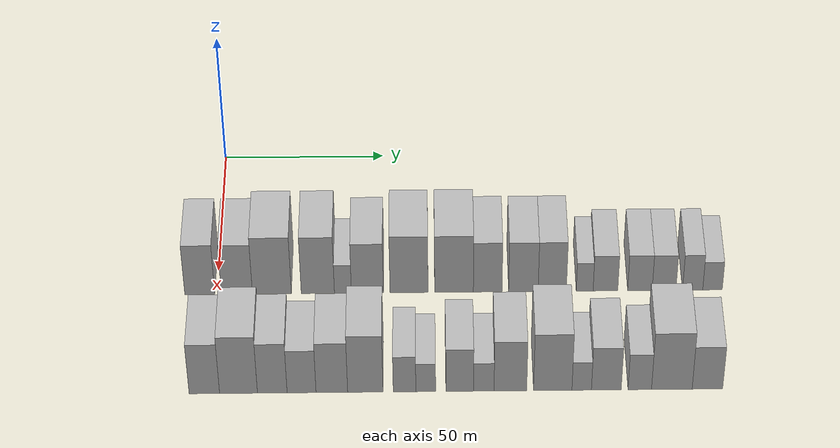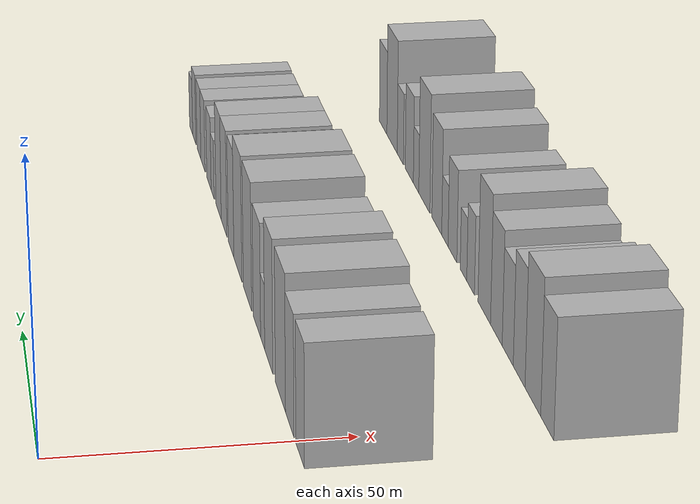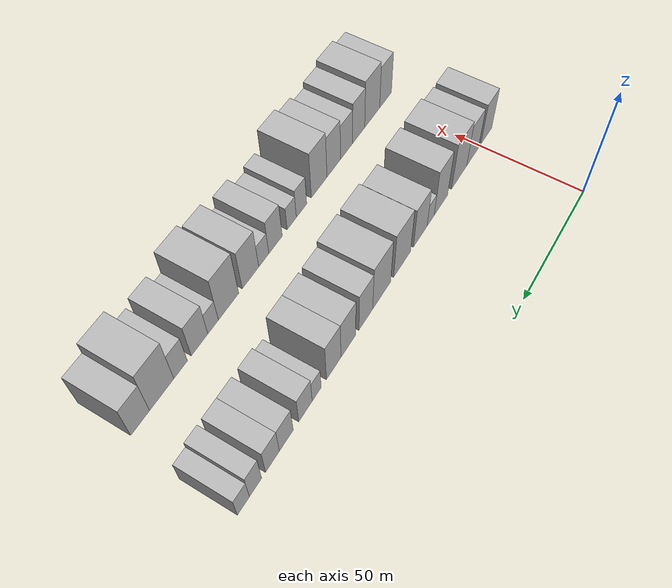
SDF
<sdf version="1.6">
 <world name="default">
  <model name="building_34">
   <static>1</static>
   <pose>50.0000 -5.1855 0 0.000000 0.000000 0.000000</pose>
   <link name="link">
    <pose>0 0 10.50 0 0 0</pose>
    <collision name="collision"><geometry><box><size>20.0000 9.0860 21.0000</size></box></geometry></collision>
    <visual name="visual">
     <cast_shadows>0</cast_shadows>
     <geometry><box><size>20.0000 9.0860 21.0000</size></box></geometry>
     <material>
      <script>
       <uri>model://HANNAS_wall/materials/scripts</uri>
       <uri>model://HANNAS_wall/materials/textures</uri>
       <name>vrc/HANNAS_wall</name>
      </script>
     </material>
    </visual>
   </link>
  </model>
  <model name="building_35">
   <static>1</static>
   <pose>50.0000 6.0593 0 0.000000 0.000000 0.000000</pose>
   <link name="link">
    <pose>0 0 10.50 0 0 0</pose>
    <collision name="collision"><geometry><box><size>20.0000 9.4036 21.0000</size></box></geometry></collision>
    <visual name="visual">
     <cast_shadows>0</cast_shadows>
     <geometry><box><size>20.0000 9.4036 21.0000</size></box></geometry>
     <material>
      <script>
       <uri>model://HANNAS_wall/materials/scripts</uri>
       <uri>model://HANNAS_wall/materials/textures</uri>
       <name>vrc/HANNAS_wall</name>
      </script>
     </material>
    </visual>
   </link>
  </model>
  <model name="building_36">
   <static>1</static>
   <pose>50.0000 16.6558 0 0.000000 0.000000 0.000000</pose>
   <link name="link">
    <pose>0 0 12.00 0 0 0</pose>
    <collision name="collision"><geometry><box><size>20.0000 11.7895 24.0000</size></box></geometry></collision>
    <visual name="visual">
     <cast_shadows>0</cast_shadows>
     <geometry><box><size>20.0000 11.7895 24.0000</size></box></geometry>
     <material>
      <script>
       <uri>model://HANNAS_wall/materials/scripts</uri>
       <uri>model://HANNAS_wall/materials/textures</uri>
       <name>vrc/HANNAS_wall</name>
      </script>
     </material>
    </visual>
   </link>
  </model>
  <model name="building_37">
   <static>1</static>
   <pose>50.0000 30.5757 0 0.000000 0.000000 0.000000</pose>
   <link name="link">
    <pose>0 0 12.00 0 0 0</pose>
    <collision name="collision"><geometry><box><size>20.0000 10.0503 24.0000</size></box></geometry></collision>
    <visual name="visual">
     <cast_shadows>0</cast_shadows>
     <geometry><box><size>20.0000 10.0503 24.0000</size></box></geometry>
     <material>
      <script>
       <uri>model://HANNAS_wall/materials/scripts</uri>
       <uri>model://HANNAS_wall/materials/textures</uri>
       <name>vrc/HANNAS_wall</name>
      </script>
     </material>
    </visual>
   </link>
  </model>
  <model name="building_38">
   <static>1</static>
   <pose>50.0000 38.1745 0 0.000000 0.000000 0.000000</pose>
   <link name="link">
    <pose>0 0 6.00 0 0 0</pose>
    <collision name="collision"><geometry><box><size>20.0000 5.1472 12.0000</size></box></geometry></collision>
    <visual name="visual">
     <cast_shadows>0</cast_shadows>
     <geometry><box><size>20.0000 5.1472 12.0000</size></box></geometry>
     <material>
      <script>
       <uri>model://HANNAS_wall/materials/scripts</uri>
       <uri>model://HANNAS_wall/materials/textures</uri>
       <name>vrc/HANNAS_wall</name>
      </script>
     </material>
    </visual>
   </link>
  </model>
  <model name="building_39">
   <static>1</static>
   <pose>50.0000 45.6033 0 0.000000 0.000000 0.000000</pose>
   <link name="link">
    <pose>0 0 10.50 0 0 0</pose>
    <collision name="collision"><geometry><box><size>20.0000 9.7105 21.0000</size></box></geometry></collision>
    <visual name="visual">
     <cast_shadows>0</cast_shadows>
     <geometry><box><size>20.0000 9.7105 21.0000</size></box></geometry>
     <material>
      <script>
       <uri>model://HANNAS_wall/materials/scripts</uri>
       <uri>model://HANNAS_wall/materials/textures</uri>
       <name>vrc/HANNAS_wall</name>
      </script>
     </material>
    </visual>
   </link>
  </model>
  <model name="building_40">
   <static>1</static>
   <pose>50.0000 58.2262 0 0.000000 0.000000 0.000000</pose>
   <link name="link">
    <pose>0 0 12.00 0 0 0</pose>
    <collision name="collision"><geometry><box><size>20.0000 11.5352 24.0000</size></box></geometry></collision>
    <visual name="visual">
     <cast_shadows>0</cast_shadows>
     <geometry><box><size>20.0000 11.5352 24.0000</size></box></geometry>
     <material>
      <script>
       <uri>model://HANNAS_wall/materials/scripts</uri>
       <uri>model://HANNAS_wall/materials/textures</uri>
       <name>vrc/HANNAS_wall</name>
      </script>
     </material>
    </visual>
   </link>
  </model>
  <model name="building_41">
   <static>1</static>
   <pose>50.0000 71.8570 0 0.000000 0.000000 0.000000</pose>
   <link name="link">
    <pose>0 0 12.00 0 0 0</pose>
    <collision name="collision"><geometry><box><size>20.0000 11.7263 24.0000</size></box></geometry></collision>
    <visual name="visual">
     <cast_shadows>0</cast_shadows>
     <geometry><box><size>20.0000 11.7263 24.0000</size></box></geometry>
     <material>
      <script>
       <uri>model://HANNAS_wall/materials/scripts</uri>
       <uri>model://HANNAS_wall/materials/textures</uri>
       <name>vrc/HANNAS_wall</name>
      </script>
     </material>
    </visual>
   </link>
  </model>
  <model name="building_42">
   <static>1</static>
   <pose>50.0000 82.0700 0 0.000000 0.000000 0.000000</pose>
   <link name="link">
    <pose>0 0 10.50 0 0 0</pose>
    <collision name="collision"><geometry><box><size>20.0000 8.6996 21.0000</size></box></geometry></collision>
    <visual name="visual">
     <cast_shadows>0</cast_shadows>
     <geometry><box><size>20.0000 8.6996 21.0000</size></box></geometry>
     <material>
      <script>
       <uri>model://HANNAS_wall/materials/scripts</uri>
       <uri>model://HANNAS_wall/materials/textures</uri>
       <name>vrc/HANNAS_wall</name>
      </script>
     </material>
    </visual>
   </link>
  </model>
  <model name="building_43">
   <static>1</static>
   <pose>50.0000 92.8942 0 0.000000 0.000000 0.000000</pose>
   <link name="link">
    <pose>0 0 10.50 0 0 0</pose>
    <collision name="collision"><geometry><box><size>20.0000 8.9489 21.0000</size></box></geometry></collision>
    <visual name="visual">
     <cast_shadows>0</cast_shadows>
     <geometry><box><size>20.0000 8.9489 21.0000</size></box></geometry>
     <material>
      <script>
       <uri>model://HANNAS_wall/materials/scripts</uri>
       <uri>model://HANNAS_wall/materials/textures</uri>
       <name>vrc/HANNAS_wall</name>
      </script>
     </material>
    </visual>
   </link>
  </model>
  <model name="building_44">
   <static>1</static>
   <pose>50.0000 101.6525 0 0.000000 0.000000 0.000000</pose>
   <link name="link">
    <pose>0 0 10.50 0 0 0</pose>
    <collision name="collision"><geometry><box><size>20.0000 8.5676 21.0000</size></box></geometry></collision>
    <visual name="visual">
     <cast_shadows>0</cast_shadows>
     <geometry><box><size>20.0000 8.5676 21.0000</size></box></geometry>
     <material>
      <script>
       <uri>model://HANNAS_wall/materials/scripts</uri>
       <uri>model://HANNAS_wall/materials/textures</uri>
       <name>vrc/HANNAS_wall</name>
      </script>
     </material>
    </visual>
   </link>
  </model>
  <model name="building_45">
   <static>1</static>
   <pose>50.0000 111.4950 0 0.000000 0.000000 0.000000</pose>
   <link name="link">
    <pose>0 0 6.00 0 0 0</pose>
    <collision name="collision"><geometry><box><size>20.0000 5.1174 12.0000</size></box></geometry></collision>
    <visual name="visual">
     <cast_shadows>0</cast_shadows>
     <geometry><box><size>20.0000 5.1174 12.0000</size></box></geometry>
     <material>
      <script>
       <uri>model://HANNAS_wall/materials/scripts</uri>
       <uri>model://HANNAS_wall/materials/textures</uri>
       <name>vrc/HANNAS_wall</name>
      </script>
     </material>
    </visual>
   </link>
  </model>
  <model name="building_46">
   <static>1</static>
   <pose>50.0000 117.8021 0 0.000000 0.000000 0.000000</pose>
   <link name="link">
    <pose>0 0 7.50 0 0 0</pose>
    <collision name="collision"><geometry><box><size>20.0000 7.4967 15.0000</size></box></geometry></collision>
    <visual name="visual">
     <cast_shadows>0</cast_shadows>
     <geometry><box><size>20.0000 7.4967 15.0000</size></box></geometry>
     <material>
      <script>
       <uri>model://HANNAS_wall/materials/scripts</uri>
       <uri>model://HANNAS_wall/materials/textures</uri>
       <name>vrc/HANNAS_wall</name>
      </script>
     </material>
    </visual>
   </link>
  </model>
  <model name="building_47">
   <static>1</static>
   <pose>50.0000 128.2664 0 0.000000 0.000000 0.000000</pose>
   <link name="link">
    <pose>0 0 7.50 0 0 0</pose>
    <collision name="collision"><geometry><box><size>20.0000 7.4319 15.0000</size></box></geometry></collision>
    <visual name="visual">
     <cast_shadows>0</cast_shadows>
     <geometry><box><size>20.0000 7.4319 15.0000</size></box></geometry>
     <material>
      <script>
       <uri>model://HANNAS_wall/materials/scripts</uri>
       <uri>model://HANNAS_wall/materials/textures</uri>
       <name>vrc/HANNAS_wall</name>
      </script>
     </material>
    </visual>
   </link>
  </model>
  <model name="building_48">
   <static>1</static>
   <pose>50.0000 135.5950 0 0.000000 0.000000 0.000000</pose>
   <link name="link">
    <pose>0 0 7.50 0 0 0</pose>
    <collision name="collision"><geometry><box><size>20.0000 7.2254 15.0000</size></box></geometry></collision>
    <visual name="visual">
     <cast_shadows>0</cast_shadows>
     <geometry><box><size>20.0000 7.2254 15.0000</size></box></geometry>
     <material>
      <script>
       <uri>model://HANNAS_wall/materials/scripts</uri>
       <uri>model://HANNAS_wall/materials/textures</uri>
       <name>vrc/HANNAS_wall</name>
      </script>
     </material>
    </visual>
   </link>
  </model>
  <model name="building_49">
   <static>1</static>
   <pose>50.0000 144.2741 0 0.000000 0.000000 0.000000</pose>
   <link name="link">
    <pose>0 0 7.50 0 0 0</pose>
    <collision name="collision"><geometry><box><size>20.0000 6.1329 15.0000</size></box></geometry></collision>
    <visual name="visual">
     <cast_shadows>0</cast_shadows>
     <geometry><box><size>20.0000 6.1329 15.0000</size></box></geometry>
     <material>
      <script>
       <uri>model://HANNAS_wall/materials/scripts</uri>
       <uri>model://HANNAS_wall/materials/textures</uri>
       <name>vrc/HANNAS_wall</name>
      </script>
     </material>
    </visual>
   </link>
  </model>
  <model name="building_50">
   <static>1</static>
   <pose>50.0000 150.3079 0 0.000000 0.000000 0.000000</pose>
   <link name="link">
    <pose>0 0 6.00 0 0 0</pose>
    <collision name="collision"><geometry><box><size>20.0000 5.9346 12.0000</size></box></geometry></collision>
    <visual name="visual">
     <cast_shadows>0</cast_shadows>
     <geometry><box><size>20.0000 5.9346 12.0000</size></box></geometry>
     <material>
      <script>
       <uri>model://HANNAS_wall/materials/scripts</uri>
       <uri>model://HANNAS_wall/materials/textures</uri>
       <name>vrc/HANNAS_wall</name>
      </script>
     </material>
    </visual>
   </link>
  </model>
  <model name="building_105">
   <static>1</static>
   <pose>90.0000 -1.7390 0 0.000000 0.000000 0.000000</pose>
   <link name="link">
    <pose>0 0 10.50 0 0 0</pose>
    <collision name="collision"><geometry><box><size>20.0000 8.9101 21.0000</size></box></geometry></collision>
    <visual name="visual">
     <cast_shadows>0</cast_shadows>
     <geometry><box><size>20.0000 8.9101 21.0000</size></box></geometry>
     <material>
      <script>
       <uri>model://HANNAS_wall/materials/scripts</uri>
       <uri>model://HANNAS_wall/materials/textures</uri>
       <name>vrc/HANNAS_wall</name>
      </script>
     </material>
    </visual>
   </link>
  </model>
  <model name="building_106">
   <static>1</static>
   <pose>90.0000 8.2553 0 0.000000 0.000000 0.000000</pose>
   <link name="link">
    <pose>0 0 12.00 0 0 0</pose>
    <collision name="collision"><geometry><box><size>20.0000 11.0785 24.0000</size></box></geometry></collision>
    <visual name="visual">
     <cast_shadows>0</cast_shadows>
     <geometry><box><size>20.0000 11.0785 24.0000</size></box></geometry>
     <material>
      <script>
       <uri>model://HANNAS_wall/materials/scripts</uri>
       <uri>model://HANNAS_wall/materials/textures</uri>
       <name>vrc/HANNAS_wall</name>
      </script>
     </material>
    </visual>
   </link>
  </model>
  <model name="building_107">
   <static>1</static>
   <pose>90.0000 18.1344 0 0.000000 0.000000 0.000000</pose>
   <link name="link">
    <pose>0 0 10.50 0 0 0</pose>
    <collision name="collision"><geometry><box><size>20.0000 8.6796 21.0000</size></box></geometry></collision>
    <visual name="visual">
     <cast_shadows>0</cast_shadows>
     <geometry><box><size>20.0000 8.6796 21.0000</size></box></geometry>
     <material>
      <script>
       <uri>model://HANNAS_wall/materials/scripts</uri>
       <uri>model://HANNAS_wall/materials/textures</uri>
       <name>vrc/HANNAS_wall</name>
      </script>
     </material>
    </visual>
   </link>
  </model>
  <model name="building_108">
   <static>1</static>
   <pose>90.0000 26.7055 0 0.000000 0.000000 0.000000</pose>
   <link name="link">
    <pose>0 0 9.00 0 0 0</pose>
    <collision name="collision"><geometry><box><size>20.0000 8.4627 18.0000</size></box></geometry></collision>
    <visual name="visual">
     <cast_shadows>0</cast_shadows>
     <geometry><box><size>20.0000 8.4627 18.0000</size></box></geometry>
     <material>
      <script>
       <uri>model://HANNAS_wall/materials/scripts</uri>
       <uri>model://HANNAS_wall/materials/textures</uri>
       <name>vrc/HANNAS_wall</name>
      </script>
     </material>
    </visual>
   </link>
  </model>
  <model name="building_109">
   <static>1</static>
   <pose>90.0000 35.5685 0 0.000000 0.000000 0.000000</pose>
   <link name="link">
    <pose>0 0 10.50 0 0 0</pose>
    <collision name="collision"><geometry><box><size>20.0000 9.2633 21.0000</size></box></geometry></collision>
    <visual name="visual">
     <cast_shadows>0</cast_shadows>
     <geometry><box><size>20.0000 9.2633 21.0000</size></box></geometry>
     <material>
      <script>
       <uri>model://HANNAS_wall/materials/scripts</uri>
       <uri>model://HANNAS_wall/materials/textures</uri>
       <name>vrc/HANNAS_wall</name>
      </script>
     </material>
    </visual>
   </link>
  </model>
  <model name="building_110">
   <static>1</static>
   <pose>90.0000 45.3783 0 0.000000 0.000000 0.000000</pose>
   <link name="link">
    <pose>0 0 12.00 0 0 0</pose>
    <collision name="collision"><geometry><box><size>20.0000 10.3563 24.0000</size></box></geometry></collision>
    <visual name="visual">
     <cast_shadows>0</cast_shadows>
     <geometry><box><size>20.0000 10.3563 24.0000</size></box></geometry>
     <material>
      <script>
       <uri>model://HANNAS_wall/materials/scripts</uri>
       <uri>model://HANNAS_wall/materials/textures</uri>
       <name>vrc/HANNAS_wall</name>
      </script>
     </material>
    </visual>
   </link>
  </model>
  <model name="building_111">
   <static>1</static>
   <pose>90.0000 56.8653 0 0.000000 0.000000 0.000000</pose>
   <link name="link">
    <pose>0 0 7.50 0 0 0</pose>
    <collision name="collision"><geometry><box><size>20.0000 6.6177 15.0000</size></box></geometry></collision>
    <visual name="visual">
     <cast_shadows>0</cast_shadows>
     <geometry><box><size>20.0000 6.6177 15.0000</size></box></geometry>
     <material>
      <script>
       <uri>model://HANNAS_wall/materials/scripts</uri>
       <uri>model://HANNAS_wall/materials/textures</uri>
       <name>vrc/HANNAS_wall</name>
      </script>
     </material>
    </visual>
   </link>
  </model>
  <model name="building_112">
   <static>1</static>
   <pose>90.0000 63.0735 0 0.000000 0.000000 0.000000</pose>
   <link name="link">
    <pose>0 0 6.00 0 0 0</pose>
    <collision name="collision"><geometry><box><size>20.0000 5.7986 12.0000</size></box></geometry></collision>
    <visual name="visual">
     <cast_shadows>0</cast_shadows>
     <geometry><box><size>20.0000 5.7986 12.0000</size></box></geometry>
     <material>
      <script>
       <uri>model://HANNAS_wall/materials/scripts</uri>
       <uri>model://HANNAS_wall/materials/textures</uri>
       <name>vrc/HANNAS_wall</name>
      </script>
     </material>
    </visual>
   </link>
  </model>
  <model name="building_113">
   <static>1</static>
   <pose>90.0000 73.0336 0 0.000000 0.000000 0.000000</pose>
   <link name="link">
    <pose>0 0 9.00 0 0 0</pose>
    <collision name="collision"><geometry><box><size>20.0000 8.1217 18.0000</size></box></geometry></collision>
    <visual name="visual">
     <cast_shadows>0</cast_shadows>
     <geometry><box><size>20.0000 8.1217 18.0000</size></box></geometry>
     <material>
      <script>
       <uri>model://HANNAS_wall/materials/scripts</uri>
       <uri>model://HANNAS_wall/materials/textures</uri>
       <name>vrc/HANNAS_wall</name>
      </script>
     </material>
    </visual>
   </link>
  </model>
  <model name="building_114">
   <static>1</static>
   <pose>90.0000 80.0879 0 0.000000 0.000000 0.000000</pose>
   <link name="link">
    <pose>0 0 6.00 0 0 0</pose>
    <collision name="collision"><geometry><box><size>20.0000 5.9867 12.0000</size></box></geometry></collision>
    <visual name="visual">
     <cast_shadows>0</cast_shadows>
     <geometry><box><size>20.0000 5.9867 12.0000</size></box></geometry>
     <material>
      <script>
       <uri>model://HANNAS_wall/materials/scripts</uri>
       <uri>model://HANNAS_wall/materials/textures</uri>
       <name>vrc/HANNAS_wall</name>
      </script>
     </material>
    </visual>
   </link>
  </model>
  <model name="building_115">
   <static>1</static>
   <pose>90.0000 87.8691 0 0.000000 0.000000 0.000000</pose>
   <link name="link">
    <pose>0 0 10.50 0 0 0</pose>
    <collision name="collision"><geometry><box><size>20.0000 9.5756 21.0000</size></box></geometry></collision>
    <visual name="visual">
     <cast_shadows>0</cast_shadows>
     <geometry><box><size>20.0000 9.5756 21.0000</size></box></geometry>
     <material>
      <script>
       <uri>model://HANNAS_wall/materials/scripts</uri>
       <uri>model://HANNAS_wall/materials/textures</uri>
       <name>vrc/HANNAS_wall</name>
      </script>
     </material>
    </visual>
   </link>
  </model>
  <model name="building_116">
   <static>1</static>
   <pose>90.0000 100.2866 0 0.000000 0.000000 0.000000</pose>
   <link name="link">
    <pose>0 0 12.00 0 0 0</pose>
    <collision name="collision"><geometry><box><size>20.0000 11.2594 24.0000</size></box></geometry></collision>
    <visual name="visual">
     <cast_shadows>0</cast_shadows>
     <geometry><box><size>20.0000 11.2594 24.0000</size></box></geometry>
     <material>
      <script>
       <uri>model://HANNAS_wall/materials/scripts</uri>
       <uri>model://HANNAS_wall/materials/textures</uri>
       <name>vrc/HANNAS_wall</name>
      </script>
     </material>
    </visual>
   </link>
  </model>
  <model name="building_117">
   <static>1</static>
   <pose>90.0000 108.7750 0 0.000000 0.000000 0.000000</pose>
   <link name="link">
    <pose>0 0 6.00 0 0 0</pose>
    <collision name="collision"><geometry><box><size>20.0000 5.7174 12.0000</size></box></geometry></collision>
    <visual name="visual">
     <cast_shadows>0</cast_shadows>
     <geometry><box><size>20.0000 5.7174 12.0000</size></box></geometry>
     <material>
      <script>
       <uri>model://HANNAS_wall/materials/scripts</uri>
       <uri>model://HANNAS_wall/materials/textures</uri>
       <name>vrc/HANNAS_wall</name>
      </script>
     </material>
    </visual>
   </link>
  </model>
  <model name="building_118">
   <static>1</static>
   <pose>90.0000 116.0005 0 0.000000 0.000000 0.000000</pose>
   <link name="link">
    <pose>0 0 9.00 0 0 0</pose>
    <collision name="collision"><geometry><box><size>20.0000 8.7336 18.0000</size></box></geometry></collision>
    <visual name="visual">
     <cast_shadows>0</cast_shadows>
     <geometry><box><size>20.0000 8.7336 18.0000</size></box></geometry>
     <material>
      <script>
       <uri>model://HANNAS_wall/materials/scripts</uri>
       <uri>model://HANNAS_wall/materials/textures</uri>
       <name>vrc/HANNAS_wall</name>
      </script>
     </material>
    </visual>
   </link>
  </model>
  <model name="building_119">
   <static>1</static>
   <pose>90.0000 125.8108 0 0.000000 0.000000 0.000000</pose>
   <link name="link">
    <pose>0 0 7.50 0 0 0</pose>
    <collision name="collision"><geometry><box><size>20.0000 6.8870 15.0000</size></box></geometry></collision>
    <visual name="visual">
     <cast_shadows>0</cast_shadows>
     <geometry><box><size>20.0000 6.8870 15.0000</size></box></geometry>
     <material>
      <script>
       <uri>model://HANNAS_wall/materials/scripts</uri>
       <uri>model://HANNAS_wall/materials/textures</uri>
       <name>vrc/HANNAS_wall</name>
      </script>
     </material>
    </visual>
   </link>
  </model>
  <model name="building_120">
   <static>1</static>
   <pose>90.0000 135.2157 0 0.000000 0.000000 0.000000</pose>
   <link name="link">
    <pose>0 0 12.00 0 0 0</pose>
    <collision name="collision"><geometry><box><size>20.0000 11.9229 24.0000</size></box></geometry></collision>
    <visual name="visual">
     <cast_shadows>0</cast_shadows>
     <geometry><box><size>20.0000 11.9229 24.0000</size></box></geometry>
     <material>
      <script>
       <uri>model://HANNAS_wall/materials/scripts</uri>
       <uri>model://HANNAS_wall/materials/textures</uri>
       <name>vrc/HANNAS_wall</name>
      </script>
     </material>
    </visual>
   </link>
  </model>
  <model name="building_121">
   <static>1</static>
   <pose>90.0000 145.6574 0 0.000000 0.000000 0.000000</pose>
   <link name="link">
    <pose>0 0 9.00 0 0 0</pose>
    <collision name="collision"><geometry><box><size>20.0000 8.9606 18.0000</size></box></geometry></collision>
    <visual name="visual">
     <cast_shadows>0</cast_shadows>
     <geometry><box><size>20.0000 8.9606 18.0000</size></box></geometry>
     <material>
      <script>
       <uri>model://HANNAS_wall/materials/scripts</uri>
       <uri>model://HANNAS_wall/materials/textures</uri>
       <name>vrc/HANNAS_wall</name>
      </script>
     </material>
    </visual>
   </link>
  </model>
 </world>
</sdf>
